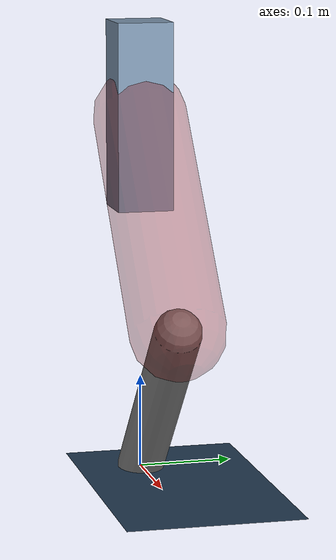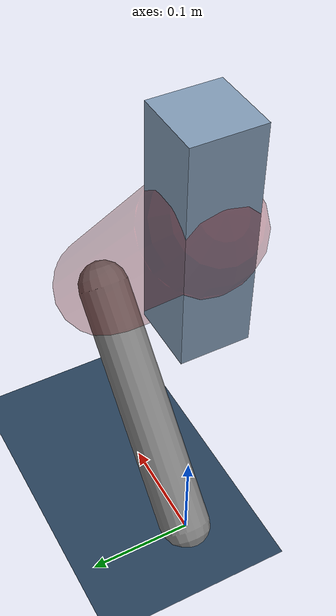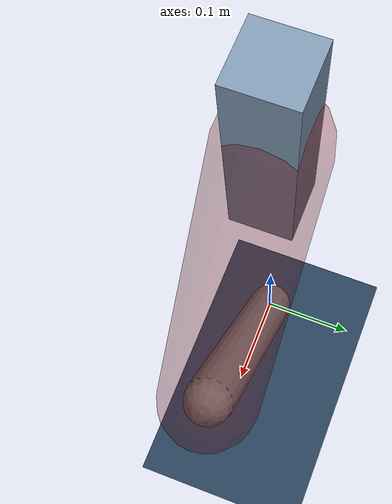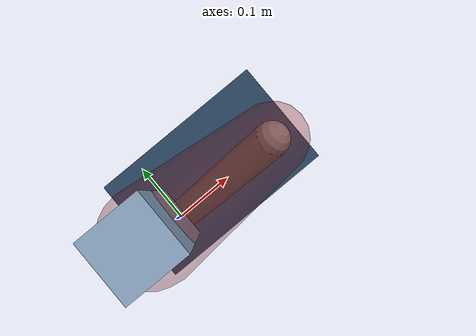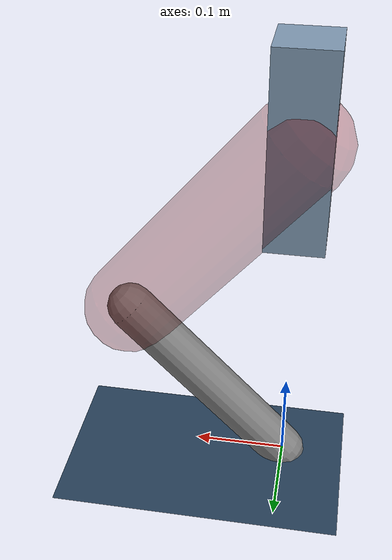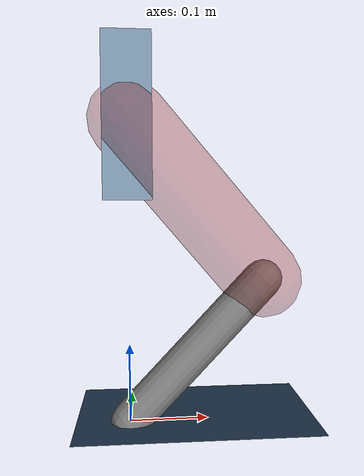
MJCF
<mujoco model="Hopper2D">
	<compiler inertiafromgeom="true" angle="radian" />
	<option timestep="0.001" integrator="implicit" cone="elliptic" solver="Newton" tolerance="1e-10" />

	<default>
		<geom contype="1" conaffinity="1" condim="3" friction="2 0.005 0.0001" solref="0.005 1" />
		<joint limited="true" damping="0.1" />
	</default>

	<asset>
		<texture name="skybox" type="skybox" builtin="gradient" rgb1=".4 .6 .8" rgb2="0 0 0" width="800" height="800" />
		<texture name="grid" type="2d" builtin="checker" rgb1=".1 .2 .3" rgb2=".2 .3 .4" width="300" height="300" mark="edge" markrgb=".2 .3 .4" />
		<material name="ground" texture="grid" texrepeat="1 1" texuniform="true" reflectance="0.1" />
		<material name="leg" rgba="0.5 0.6 0.7 1" />
	</asset>

	<worldbody>

		<geom name="floor" type="plane" size="5 5 0.25" material="ground" />

		<light directional="false" diffuse="0.8 0.8 0.8" specular="0.3 0.3 0.3" pos="0 0 2" dir="0 0 -1" />
		<light mode="targetbodycom" target="base" directional="false" diffuse="0.8 0.8 0.8" specular="0.3 0.3 0.3" pos="0 0 2" dir="0 0 -1" />

		<camera name="fixed" pos="0 -2 1" xyaxes="1 0 0 0 0 1" />
		<camera name="tracking" mode="trackcom" pos="0 -3 1" />

		<body name="root" pos="0 0 0.3851627750095203">
			<joint name="slide_x" type="slide" axis="1 0 0" range="-100 100" />
			<joint name="slide_z" type="slide" axis="0 0 1" range="0 10" />

			<body name="base" pos="0 0 0">
				<geom name="torso" type="box" size="0.03 0.03 0.1" mass="2.271" material="leg" />

				<body name="link1" pos="0 0 0" euler="0 0.8644168069062432 0">
					<joint type="hinge" axis="0 -1 0" pos="0 0 0" name="hinge1" limited="true" range="-3.14 3.14" stiffness="0" damping="0.1" />
					<geom name="thigh" type="capsule" fromto="0 0 0 0.26518529554155107 0 0" size="0.05" rgba="0.5 0 0 0.3" mass="0.8959817684080327" />

					<body name="link2" pos="0.26518529554155107 0 0" euler="0 1.459995233469387 0">
						<joint type="hinge" axis="0 -1 0" pos="0 0 0" name="hinge2" limited="true" range="-3.14 3.14" stiffness="0" damping="0.1" />
						<geom name="shank" type="capsule" fromto="0 0 0 0.2515454628527827 0 0" size="0.025" mass="0.4437909165675044" />

					</body>
				</body>
			</body>
		</body>
	</worldbody>

	<actuator>
		<motor name="torque1" joint="hinge1" ctrlrange="-79.32098037317256 79.32098037317256" ctrllimited="true" gear="1" />
		<motor name="torque2" joint="hinge2" ctrlrange="-25.517969785765807 25.517969785765807" ctrllimited="true" gear="1" />
	</actuator>
</mujoco>
